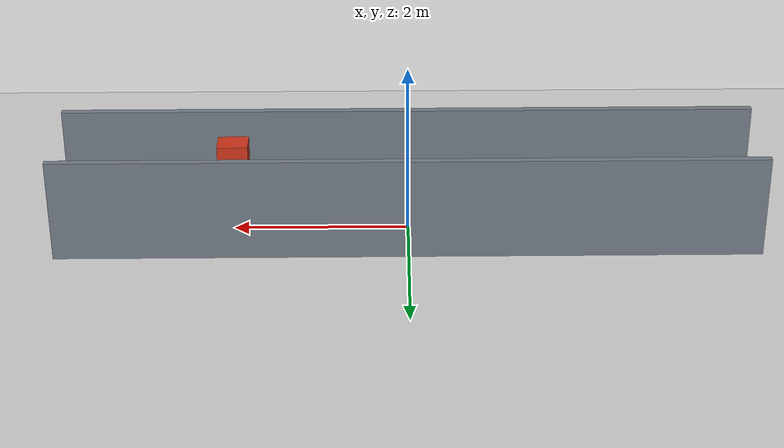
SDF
<?xml version="1.0"?>
<sdf version="1.6">
  <world name="factory_aisle">
    <gravity>0 0 -9.81</gravity>
    <physics name="default_physics" type="ode">
      <max_step_size>0.001</max_step_size>
      <real_time_factor>1.0</real_time_factor>
      <real_time_update_rate>1000</real_time_update_rate>
    </physics>
    <include><uri>model://ground_plane</uri></include>
    <include><uri>model://sun</uri></include>

    <!-- Clear inside width is 1.20 m: wall inner faces at y = +/-0.60 m. -->
    <model name="left_aisle_wall">
      <static>true</static>
      <pose>0 0.64 0.60 0 0 0</pose>
      <link name="wall">
        <collision name="collision"><geometry><box><size>8.0 0.08 1.20</size></box></geometry></collision>
        <visual name="visual"><geometry><box><size>8.0 0.08 1.20</size></box></geometry><material><ambient>0.45 0.48 0.52 1</ambient><diffuse>0.45 0.48 0.52 1</diffuse></material></visual>
      </link>
    </model>
    <model name="right_aisle_wall">
      <static>true</static>
      <pose>0 -0.64 0.60 0 0 0</pose>
      <link name="wall">
        <collision name="collision"><geometry><box><size>8.0 0.08 1.20</size></box></geometry></collision>
        <visual name="visual"><geometry><box><size>8.0 0.08 1.20</size></box></geometry><material><ambient>0.45 0.48 0.52 1</ambient><diffuse>0.45 0.48 0.52 1</diffuse></material></visual>
      </link>
    </model>

    <!-- A fixed obstacle gives /scan something to detect; it is not a person model. -->
    <model name="aisle_obstacle">
      <static>true</static>
      <pose>2.0 -0.22 0.50 0 0 0</pose>
      <link name="obstacle">
        <collision name="collision"><geometry><box><size>0.35 0.28 1.00</size></box></geometry></collision>
        <visual name="visual"><geometry><box><size>0.35 0.28 1.00</size></box></geometry><material><ambient>0.80 0.20 0.10 1</ambient><diffuse>0.80 0.20 0.10 1</diffuse></material></visual>
      </link>
    </model>
  </world>
</sdf>
